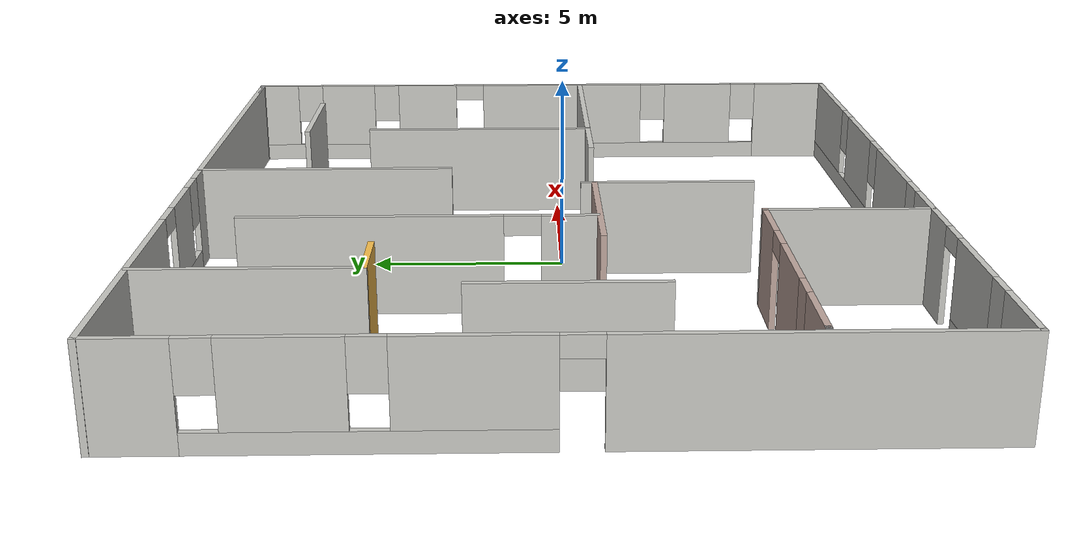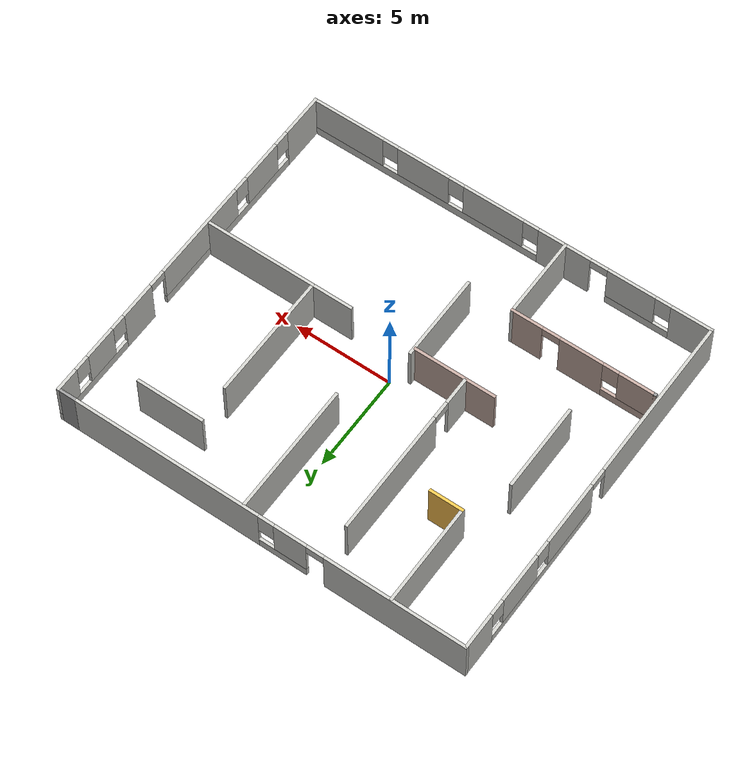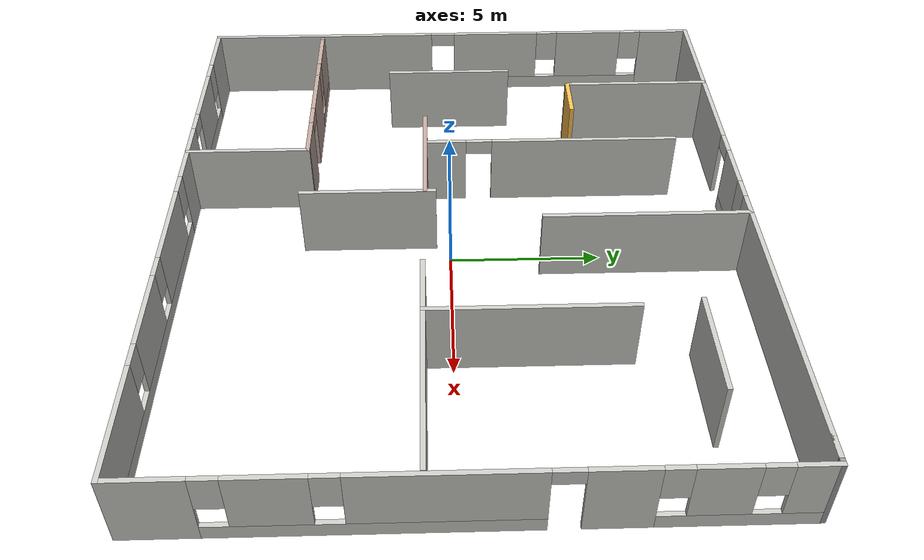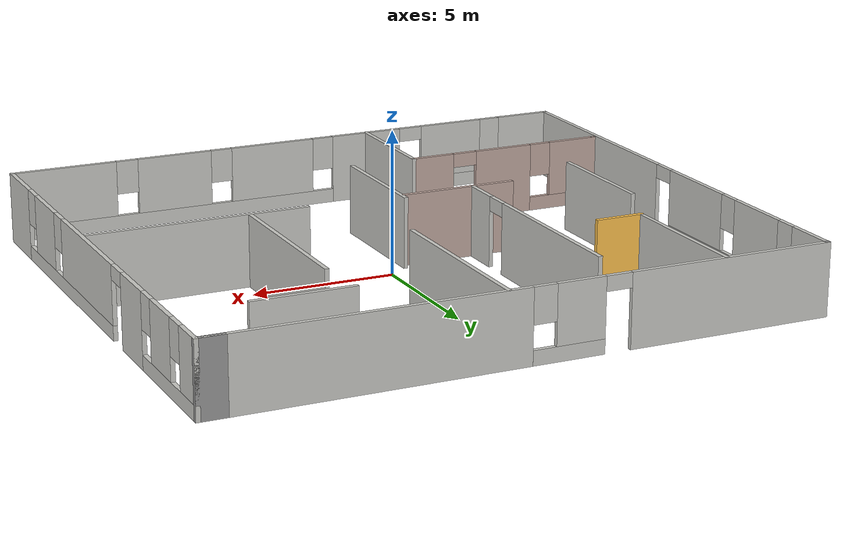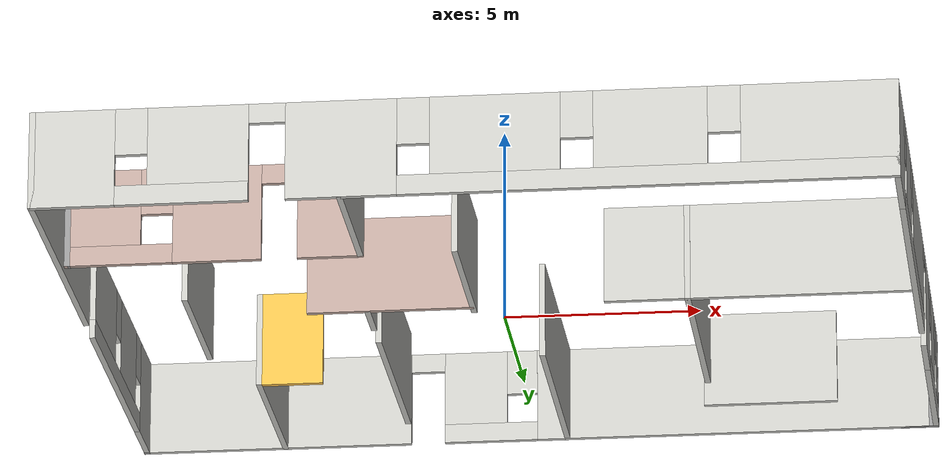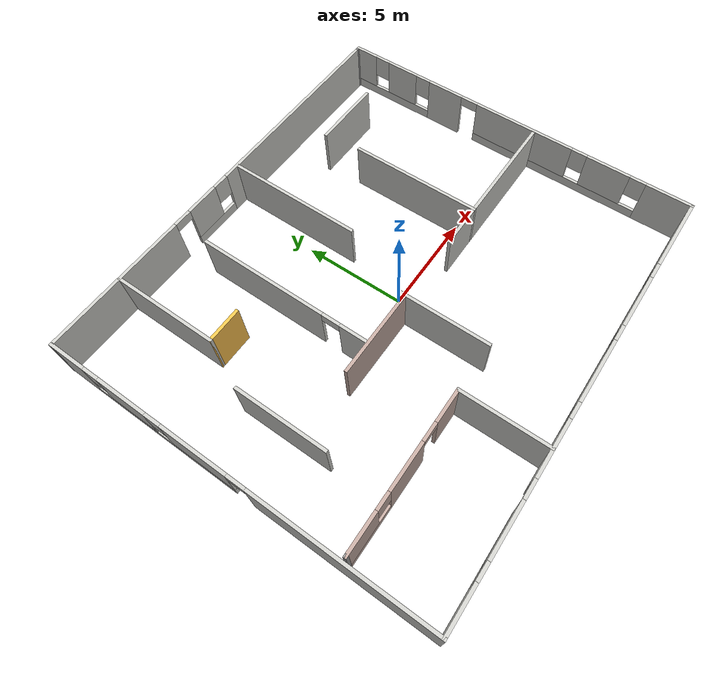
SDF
<?xml version='1.0'?>
<sdf version='1.6'>
  <model name='training_area'>
    <pose frame=''>-0.095962 0.33644 0 0 -0 0</pose>
    <link name='Wall_11'>
      <collision name='Wall_11_Collision'>
        <geometry>
          <box>
            <size>4.25 0.15 2.5</size>
          </box>
        </geometry>
        <pose frame=''>0 0 1.25 0 -0 0</pose>
      </collision>
      <visual name='Wall_11_Visual'>
        <pose frame=''>0 0 1.25 0 -0 0</pose>
        <geometry>
          <box>
            <size>4.25 0.15 2.5</size>
          </box>
        </geometry>
        <material>
          <script>
            <uri>file://media/materials/scripts/gazebo.material</uri>
            <name>Gazebo/CeilingTiled</name>
          </script>
          <ambient>0.760784 0.662745 0.627451 1</ambient>
        </material>
        <meta>
          <layer>0</layer>
        </meta>
      </visual>
      <pose frame=''>-2.97768 -7.23047 0 0 0 -1.5708</pose>
    </link>
    <link name='Wall_13'>
      <pose frame=''>-6.65268 -5.18047 0 0 -0 3.14159</pose>
      <visual name='Wall_13_Visual_0'>
        <pose frame=''>-2.92229 0 1.25 0 -0 0</pose>
        <geometry>
          <box>
            <size>1.65542 0.15 2.5</size>
          </box>
        </geometry>
        <material>
          <script>
            <uri>file://media/materials/scripts/gazebo.material</uri>
            <name>Gazebo/Grey</name>
          </script>
          <ambient>0.760784 0.662745 0.627451 1</ambient>
        </material>
        <meta>
          <layer>0</layer>
        </meta>
      </visual>
      <collision name='Wall_13_Collision_0'>
        <geometry>
          <box>
            <size>1.65542 0.15 2.5</size>
          </box>
        </geometry>
        <pose frame=''>-2.92229 0 1.25 0 -0 0</pose>
      </collision>
      <visual name='Wall_13_Visual_1'>
        <pose frame=''>-0.081383 0 1.25 0 -0 0</pose>
        <geometry>
          <box>
            <size>2.22639 0.15 2.5</size>
          </box>
        </geometry>
        <material>
          <script>
            <uri>file://media/materials/scripts/gazebo.material</uri>
            <name>Gazebo/Grey</name>
          </script>
          <ambient>0.760784 0.662745 0.627451 1</ambient>
        </material>
        <meta>
          <layer>0</layer>
        </meta>
      </visual>
      <collision name='Wall_13_Collision_1'>
        <geometry>
          <box>
            <size>2.22639 0.15 2.5</size>
          </box>
        </geometry>
        <pose frame=''>-0.081383 0 1.25 0 -0 0</pose>
      </collision>
      <visual name='Wall_13_Visual_2'>
        <pose frame=''>2.39091 0 0.25 0 -0 0</pose>
        <geometry>
          <box>
            <size>2.71819 0.15 0.5</size>
          </box>
        </geometry>
        <material>
          <script>
            <uri>file://media/materials/scripts/gazebo.material</uri>
            <name>Gazebo/Grey</name>
          </script>
          <ambient>0.760784 0.662745 0.627451 1</ambient>
        </material>
        <meta>
          <layer>0</layer>
        </meta>
      </visual>
      <collision name='Wall_13_Collision_2'>
        <geometry>
          <box>
            <size>2.71819 0.15 0.5</size>
          </box>
        </geometry>
        <pose frame=''>2.39091 0 0.25 0 -0 0</pose>
      </collision>
      <visual name='Wall_13_Visual_3'>
        <pose frame=''>2.79091 0 1.5 0 -0 0</pose>
        <geometry>
          <box>
            <size>1.91819 0.15 2</size>
          </box>
        </geometry>
        <material>
          <script>
            <uri>file://media/materials/scripts/gazebo.material</uri>
            <name>Gazebo/Grey</name>
          </script>
          <ambient>0.760784 0.662745 0.627451 1</ambient>
        </material>
        <meta>
          <layer>0</layer>
        </meta>
      </visual>
      <collision name='Wall_13_Collision_3'>
        <geometry>
          <box>
            <size>1.91819 0.15 2</size>
          </box>
        </geometry>
        <pose frame=''>2.79091 0 1.5 0 -0 0</pose>
      </collision>
      <visual name='Wall_13_Visual_4'>
        <pose frame=''>1.43181 0 1.9 0 -0 0</pose>
        <geometry>
          <box>
            <size>0.8 0.15 1.2</size>
          </box>
        </geometry>
        <material>
          <script>
            <uri>file://media/materials/scripts/gazebo.material</uri>
            <name>Gazebo/Grey</name>
          </script>
          <ambient>0.760784 0.662745 0.627451 1</ambient>
        </material>
        <meta>
          <layer>0</layer>
        </meta>
      </visual>
      <collision name='Wall_13_Collision_4'>
        <geometry>
          <box>
            <size>0.8 0.15 1.2</size>
          </box>
        </geometry>
        <pose frame=''>1.43181 0 1.9 0 -0 0</pose>
      </collision>
      <visual name='Wall_13_Visual_5'>
        <pose frame=''>-1.64458 0 2.25 0 -0 0</pose>
        <geometry>
          <box>
            <size>0.9 0.15 0.5</size>
          </box>
        </geometry>
        <material>
          <script>
            <uri>file://media/materials/scripts/gazebo.material</uri>
            <name>Gazebo/Grey</name>
          </script>
          <ambient>0.760784 0.662745 0.627451 1</ambient>
        </material>
        <meta>
          <layer>0</layer>
        </meta>
      </visual>
      <collision name='Wall_13_Collision_5'>
        <geometry>
          <box>
            <size>0.9 0.15 0.5</size>
          </box>
        </geometry>
        <pose frame=''>-1.64458 0 2.25 0 -0 0</pose>
      </collision>
    </link>
    <link name='Wall_14'>
      <collision name='Wall_14_Collision'>
        <geometry>
          <box>
            <size>0.15 0.15 2.5</size>
          </box>
        </geometry>
        <pose frame=''>0 0 1.25 0 -0 0</pose>
      </collision>
      <visual name='Wall_14_Visual'>
        <pose frame=''>0 0 1.25 0 -0 0</pose>
        <geometry>
          <box>
            <size>0.15 0.15 2.5</size>
          </box>
        </geometry>
        <material>
          <script>
            <uri>file://media/materials/scripts/gazebo.material</uri>
            <name>Gazebo/Grey</name>
          </script>
          <ambient>1 1 1 1</ambient>
        </material>
        <meta>
          <layer>0</layer>
        </meta>
      </visual>
      <pose frame=''>-10.3277 -5.18047 0 0 -0 0</pose>
    </link>
    <link name='Wall_16'>
      <collision name='Wall_16_Collision'>
        <geometry>
          <box>
            <size>4.25 0.15 2.5</size>
          </box>
        </geometry>
        <pose frame=''>0 0 1.25 0 -0 0</pose>
      </collision>
      <visual name='Wall_16_Visual'>
        <pose frame=''>0 0 1.25 0 -0 0</pose>
        <geometry>
          <box>
            <size>4.25 0.15 2.5</size>
          </box>
        </geometry>
        <material>
          <script>
            <uri>file://media/materials/scripts/gazebo.material</uri>
            <name>Gazebo/Grey</name>
          </script>
          <ambient>0.760784 0.662745 0.627451 1</ambient>
        </material>
        <meta>
          <layer>0</layer>
        </meta>
      </visual>
      <pose frame=''>-2.72495 -1.14348 0 0 -0 0</pose>
    </link>
    <link name='Wall_18'>
      <pose frame=''>-3.31028 3.23789 0 0 -0 1.5708</pose>
      <visual name='Wall_18_Visual_0'>
        <pose frame=''>-3.66742 0 1.25 0 -0 0</pose>
        <geometry>
          <box>
            <size>1.41515 0.15 2.5</size>
          </box>
        </geometry>
        <material>
          <script>
            <uri>file://media/materials/scripts/gazebo.material</uri>
            <name>Gazebo/CeilingTiled</name>
          </script>
          <ambient>0.760784 0.662745 0.627451 1</ambient>
        </material>
        <meta>
          <layer>0</layer>
        </meta>
      </visual>
      <collision name='Wall_18_Collision_0'>
        <geometry>
          <box>
            <size>1.41515 0.15 2.5</size>
          </box>
        </geometry>
        <pose frame=''>-3.66742 0 1.25 0 -0 0</pose>
      </collision>
      <visual name='Wall_18_Visual_1'>
        <pose frame=''>1.15758 0 1.25 0 -0 0</pose>
        <geometry>
          <box>
            <size>6.43485 0.15 2.5</size>
          </box>
        </geometry>
        <material>
          <script>
            <uri>file://media/materials/scripts/gazebo.material</uri>
            <name>Gazebo/CeilingTiled</name>
          </script>
          <ambient>0.760784 0.662745 0.627451 1</ambient>
        </material>
        <meta>
          <layer>0</layer>
        </meta>
      </visual>
      <collision name='Wall_18_Collision_1'>
        <geometry>
          <box>
            <size>6.43485 0.15 2.5</size>
          </box>
        </geometry>
        <pose frame=''>1.15758 0 1.25 0 -0 0</pose>
      </collision>
      <visual name='Wall_18_Visual_2'>
        <pose frame=''>-2.50985 0 2.25 0 -0 0</pose>
        <geometry>
          <box>
            <size>0.9 0.15 0.5</size>
          </box>
        </geometry>
        <material>
          <script>
            <uri>file://media/materials/scripts/gazebo.material</uri>
            <name>Gazebo/CeilingTiled</name>
          </script>
          <ambient>0.760784 0.662745 0.627451 1</ambient>
        </material>
        <meta>
          <layer>0</layer>
        </meta>
      </visual>
      <collision name='Wall_18_Collision_2'>
        <geometry>
          <box>
            <size>0.9 0.15 0.5</size>
          </box>
        </geometry>
        <pose frame=''>-2.50985 0 2.25 0 -0 0</pose>
      </collision>
    </link>
    <link name='Wall_20'>
      <collision name='Wall_20_Collision'>
        <geometry>
          <box>
            <size>4.5 0.15 2.5</size>
          </box>
        </geometry>
        <pose frame=''>0 0 1.25 0 -0 0</pose>
      </collision>
      <visual name='Wall_20_Visual'>
        <pose frame=''>0 0 1.25 0 -0 0</pose>
        <geometry>
          <box>
            <size>4.5 0.15 2.5</size>
          </box>
        </geometry>
        <material>
          <script>
            <uri>file://media/materials/scripts/gazebo.material</uri>
            <name>Gazebo/CeilingTiled</name>
          </script>
          <ambient>0.996078 0.47451 0.0196078 1</ambient>
        </material>
        <meta>
          <layer>0</layer>
        </meta>
      </visual>
      <pose frame=''>-0.625048 -3.03701 0 0 -0 1.5708</pose>
    </link>
    <link name='Wall_22'>
      <collision name='Wall_22_Collision'>
        <geometry>
          <box>
            <size>5.25 0.15 2.5</size>
          </box>
        </geometry>
        <pose frame=''>0 0 1.25 0 -0 0</pose>
      </collision>
      <visual name='Wall_22_Visual'>
        <pose frame=''>0 0 1.25 0 -0 0</pose>
        <geometry>
          <box>
            <size>5.25 0.15 2.5</size>
          </box>
        </geometry>
        <material>
          <script>
            <uri>file://media/materials/scripts/gazebo.material</uri>
            <name>Gazebo/CeilingTiled</name>
          </script>
          <ambient>1 0.764706 0.305882 1</ambient>
        </material>
        <meta>
          <layer>0</layer>
        </meta>
      </visual>
      <pose frame=''>-6.80922 6.72196 0 0 0 -1.5708</pose>
    </link>
    <link name='Wall_23'>
      <collision name='Wall_23_Collision'>
        <geometry>
          <box>
            <size>1.75 0.15 2.5</size>
          </box>
        </geometry>
        <pose frame=''>0 0 1.25 0 -0 0</pose>
      </collision>
      <visual name='Wall_23_Visual'>
        <pose frame=''>0 0 1.25 0 -0 0</pose>
        <geometry>
          <box>
            <size>1.75 0.15 2.5</size>
          </box>
        </geometry>
        <material>
          <script>
            <uri>file://media/materials/scripts/gazebo.material</uri>
            <name>Gazebo/Grey</name>
          </script>
          <ambient>1 0.764706 0.305882 1</ambient>
        </material>
        <meta>
          <layer>0</layer>
        </meta>
      </visual>
      <pose frame=''>-6.00922 4.17196 0 0 -0 0</pose>
    </link>
    <link name='Wall_26'>
      <collision name='Wall_26_Collision'>
        <geometry>
          <box>
            <size>4.5 0.15 2.5</size>
          </box>
        </geometry>
        <pose frame=''>0 0 1.25 0 -0 0</pose>
      </collision>
      <visual name='Wall_26_Visual'>
        <pose frame=''>0 0 1.25 0 -0 0</pose>
        <geometry>
          <box>
            <size>4.5 0.15 2.5</size>
          </box>
        </geometry>
        <material>
          <script>
            <uri>file://media/materials/scripts/gazebo.material</uri>
            <name>Gazebo/CeilingTiled</name>
          </script>
          <ambient>1 0.764706 0.305882 1</ambient>
        </material>
        <meta>
          <layer>0</layer>
        </meta>
      </visual>
      <pose frame=''>-7.78566 -0.226392 0 0 0 -1.5708</pose>
    </link>
    <link name='Wall_28'>
      <collision name='Wall_28_Collision'>
        <geometry>
          <box>
            <size>6.75 0.15 2.5</size>
          </box>
        </geometry>
        <pose frame=''>0 0 1.25 0 -0 0</pose>
      </collision>
      <visual name='Wall_28_Visual'>
        <pose frame=''>0 0 1.25 0 -0 0</pose>
        <geometry>
          <box>
            <size>6.75 0.15 2.5</size>
          </box>
        </geometry>
        <material>
          <script>
            <uri>file://media/materials/scripts/gazebo.material</uri>
            <name>Gazebo/CeilingTiled</name>
          </script>
          <ambient>0.435294 0.796078 0.67451 1</ambient>
        </material>
        <meta>
          <layer>0</layer>
        </meta>
      </visual>
      <pose frame=''>0.758252 5.97196 0 0 0 -1.5708</pose>
    </link>
    <link name='Wall_3'>
      <pose frame=''>-0.13 9.3 0 0 -0 3.14159</pose>
      <visual name='Wall_3_Visual_0'>
        <pose frame=''>-5.29204 0 1.25 0 -0 0</pose>
        <geometry>
          <box>
            <size>10.4159 0.15 2.5</size>
          </box>
        </geometry>
        <material>
          <script>
            <uri>file://media/materials/scripts/gazebo.material</uri>
            <name>Gazebo/CeilingTiled</name>
          </script>
          <ambient>1 0.764706 0.305882 1</ambient>
        </material>
        <meta>
          <layer>0</layer>
        </meta>
      </visual>
      <collision name='Wall_3_Collision_0'>
        <geometry>
          <box>
            <size>10.4159 0.15 2.5</size>
          </box>
        </geometry>
        <pose frame=''>-5.29204 0 1.25 0 -0 0</pose>
      </collision>
      <visual name='Wall_3_Visual_1'>
        <pose frame=''>6.89421 0 1.25 0 -0 0</pose>
        <geometry>
          <box>
            <size>7.21159 0.15 2.5</size>
          </box>
        </geometry>
        <material>
          <script>
            <uri>file://media/materials/scripts/gazebo.material</uri>
            <name>Gazebo/CeilingTiled</name>
          </script>
          <ambient>1 0.764706 0.305882 1</ambient>
        </material>
        <meta>
          <layer>0</layer>
        </meta>
      </visual>
      <collision name='Wall_3_Collision_1'>
        <geometry>
          <box>
            <size>7.21159 0.15 2.5</size>
          </box>
        </geometry>
        <pose frame=''>6.89421 0 1.25 0 -0 0</pose>
      </collision>
      <visual name='Wall_3_Visual_2'>
        <pose frame=''>1.15217 0 0.25 0 -0 0</pose>
        <geometry>
          <box>
            <size>2.47249 0.15 0.5</size>
          </box>
        </geometry>
        <material>
          <script>
            <uri>file://media/materials/scripts/gazebo.material</uri>
            <name>Gazebo/CeilingTiled</name>
          </script>
          <ambient>1 0.764706 0.305882 1</ambient>
        </material>
        <meta>
          <layer>0</layer>
        </meta>
      </visual>
      <collision name='Wall_3_Collision_2'>
        <geometry>
          <box>
            <size>2.47249 0.15 0.5</size>
          </box>
        </geometry>
        <pose frame=''>1.15217 0 0.25 0 -0 0</pose>
      </collision>
      <visual name='Wall_3_Visual_3'>
        <pose frame=''>1.55217 0 1.5 0 -0 0</pose>
        <geometry>
          <box>
            <size>1.67249 0.15 2</size>
          </box>
        </geometry>
        <material>
          <script>
            <uri>file://media/materials/scripts/gazebo.material</uri>
            <name>Gazebo/CeilingTiled</name>
          </script>
          <ambient>1 0.764706 0.305882 1</ambient>
        </material>
        <meta>
          <layer>0</layer>
        </meta>
      </visual>
      <collision name='Wall_3_Collision_3'>
        <geometry>
          <box>
            <size>1.67249 0.15 2</size>
          </box>
        </geometry>
        <pose frame=''>1.55217 0 1.5 0 -0 0</pose>
      </collision>
      <visual name='Wall_3_Visual_4'>
        <pose frame=''>0.315921 0 1.9 0 -0 0</pose>
        <geometry>
          <box>
            <size>0.8 0.15 1.2</size>
          </box>
        </geometry>
        <material>
          <script>
            <uri>file://media/materials/scripts/gazebo.material</uri>
            <name>Gazebo/CeilingTiled</name>
          </script>
          <ambient>1 0.764706 0.305882 1</ambient>
        </material>
        <meta>
          <layer>0</layer>
        </meta>
      </visual>
      <collision name='Wall_3_Collision_4'>
        <geometry>
          <box>
            <size>0.8 0.15 1.2</size>
          </box>
        </geometry>
        <pose frame=''>0.315921 0 1.9 0 -0 0</pose>
      </collision>
      <visual name='Wall_3_Visual_5'>
        <pose frame=''>2.83841 0 2.25 0 -0 0</pose>
        <geometry>
          <box>
            <size>0.9 0.15 0.5</size>
          </box>
        </geometry>
        <material>
          <script>
            <uri>file://media/materials/scripts/gazebo.material</uri>
            <name>Gazebo/CeilingTiled</name>
          </script>
          <ambient>1 0.764706 0.305882 1</ambient>
        </material>
        <meta>
          <layer>0</layer>
        </meta>
      </visual>
      <collision name='Wall_3_Collision_5'>
        <geometry>
          <box>
            <size>0.9 0.15 0.5</size>
          </box>
        </geometry>
        <pose frame=''>2.83841 0 2.25 0 -0 0</pose>
      </collision>
    </link>
    <link name='Wall_30'>
      <collision name='Wall_30_Collision'>
        <geometry>
          <box>
            <size>3.5 0.15 2.5</size>
          </box>
        </geometry>
        <pose frame=''>0 0 1.25 0 -0 0</pose>
      </collision>
      <visual name='Wall_30_Visual'>
        <pose frame=''>0 0 1.25 0 -0 0</pose>
        <geometry>
          <box>
            <size>3.5 0.15 2.5</size>
          </box>
        </geometry>
        <material>
          <script>
            <uri>file://media/materials/scripts/gazebo.material</uri>
            <name>Gazebo/CeilingTiled</name>
          </script>
          <ambient>0.435294 0.796078 0.67451 1</ambient>
        </material>
        <meta>
          <layer>0</layer>
        </meta>
      </visual>
      <pose frame=''>6.33904 6.99359 0 0 -0 0</pose>
    </link>
    <link name='Wall_32'>
      <collision name='Wall_32_Collision'>
        <geometry>
          <box>
            <size>6.5 0.15 2.5</size>
          </box>
        </geometry>
        <pose frame=''>0 0 1.25 0 -0 0</pose>
      </collision>
      <visual name='Wall_32_Visual'>
        <pose frame=''>0 0 1.25 0 -0 0</pose>
        <geometry>
          <box>
            <size>6.5 0.15 2.5</size>
          </box>
        </geometry>
        <material>
          <script>
            <uri>file://media/materials/scripts/gazebo.material</uri>
            <name>Gazebo/CeilingTiled</name>
          </script>
          <ambient>0.435294 0.796078 0.67451 1</ambient>
        </material>
        <meta>
          <layer>0</layer>
        </meta>
      </visual>
      <pose frame=''>4.82678 1.94706 0 0 0 -1.5708</pose>
    </link>
    <link name='Wall_34'>
      <collision name='Wall_34_Collision'>
        <geometry>
          <box>
            <size>7.75 0.15 2.5</size>
          </box>
        </geometry>
        <pose frame=''>0 0 1.25 0 -0 0</pose>
      </collision>
      <visual name='Wall_34_Visual'>
        <pose frame=''>0 0 1.25 0 -0 0</pose>
        <geometry>
          <box>
            <size>7.75 0.15 2.5</size>
          </box>
        </geometry>
        <material>
          <script>
            <uri>file://media/materials/scripts/gazebo.material</uri>
            <name>Gazebo/CeilingTiled</name>
          </script>
          <ambient>0.996078 0.47451 0.0196078 1</ambient>
        </material>
        <meta>
          <layer>0</layer>
        </meta>
      </visual>
      <pose frame=''>6.59252 -1.22485 0 0 -0 0</pose>
    </link>
    <link name='Wall_4'>
      <collision name='Wall_4_Collision'>
        <geometry>
          <box>
            <size>0.16 0.15 2.5</size>
          </box>
        </geometry>
        <pose frame=''>0 0 1.25 0 -0 0</pose>
      </collision>
      <visual name='Wall_4_Visual'>
        <pose frame=''>0 0 1.25 0 -0 0</pose>
        <geometry>
          <box>
            <size>0.16 0.15 2.5</size>
          </box>
        </geometry>
        <material>
          <script>
            <uri>file://media/materials/scripts/gazebo.material</uri>
            <name>Gazebo/Grey</name>
          </script>
          <ambient>1 1 1 1</ambient>
        </material>
        <meta>
          <layer>0</layer>
        </meta>
      </visual>
      <pose frame=''>-10.55 9.3 0 0 -0 0</pose>
    </link>
    <link name='Wall_5'>
      <pose frame=''>-10.545 0 0 0 0 -1.5708</pose>
      <visual name='Wall_5_Visual_0'>
        <pose frame=''>-8.42498 0 1.25 0 -0 0</pose>
        <geometry>
          <box>
            <size>1.90004 0.15 2.5</size>
          </box>
        </geometry>
        <material>
          <script>
            <uri>file://media/materials/scripts/gazebo.material</uri>
            <name>Gazebo/CeilingTiled</name>
          </script>
          <ambient>1 0.764706 0.305882 1</ambient>
        </material>
        <meta>
          <layer>0</layer>
        </meta>
      </visual>
      <collision name='Wall_5_Collision_0'>
        <geometry>
          <box>
            <size>1.90004 0.15 2.5</size>
          </box>
        </geometry>
        <pose frame=''>-8.42498 0 1.25 0 -0 0</pose>
      </collision>
      <visual name='Wall_5_Visual_1'>
        <pose frame=''>5.11807 0 1.25 0 -0 0</pose>
        <geometry>
          <box>
            <size>8.51386 0.15 2.5</size>
          </box>
        </geometry>
        <material>
          <script>
            <uri>file://media/materials/scripts/gazebo.material</uri>
            <name>Gazebo/CeilingTiled</name>
          </script>
          <ambient>1 0.764706 0.305882 1</ambient>
        </material>
        <meta>
          <layer>0</layer>
        </meta>
      </visual>
      <collision name='Wall_5_Collision_1'>
        <geometry>
          <box>
            <size>8.51386 0.15 2.5</size>
          </box>
        </geometry>
        <pose frame=''>5.11807 0 1.25 0 -0 0</pose>
      </collision>
      <visual name='Wall_5_Visual_2'>
        <pose frame=''>-3.75691 0 0.25 0 -0 0</pose>
        <geometry>
          <box>
            <size>7.4361 0.15 0.5</size>
          </box>
        </geometry>
        <material>
          <script>
            <uri>file://media/materials/scripts/gazebo.material</uri>
            <name>Gazebo/CeilingTiled</name>
          </script>
          <ambient>1 0.764706 0.305882 1</ambient>
        </material>
        <meta>
          <layer>0</layer>
        </meta>
      </visual>
      <collision name='Wall_5_Collision_2'>
        <geometry>
          <box>
            <size>7.4361 0.15 0.5</size>
          </box>
        </geometry>
        <pose frame=''>-3.75691 0 0.25 0 -0 0</pose>
      </collision>
      <visual name='Wall_5_Visual_3'>
        <pose frame=''>-5.40686 0 1.5 0 -0 0</pose>
        <geometry>
          <box>
            <size>2.5362 0.15 2</size>
          </box>
        </geometry>
        <material>
          <script>
            <uri>file://media/materials/scripts/gazebo.material</uri>
            <name>Gazebo/CeilingTiled</name>
          </script>
          <ambient>1 0.764706 0.305882 1</ambient>
        </material>
        <meta>
          <layer>0</layer>
        </meta>
      </visual>
      <collision name='Wall_5_Collision_3'>
        <geometry>
          <box>
            <size>2.5362 0.15 2</size>
          </box>
        </geometry>
        <pose frame=''>-5.40686 0 1.5 0 -0 0</pose>
      </collision>
      <visual name='Wall_5_Visual_4'>
        <pose frame=''>-1.68881 0 1.5 0 -0 0</pose>
        <geometry>
          <box>
            <size>3.2999 0.15 2</size>
          </box>
        </geometry>
        <material>
          <script>
            <uri>file://media/materials/scripts/gazebo.material</uri>
            <name>Gazebo/CeilingTiled</name>
          </script>
          <ambient>1 0.764706 0.305882 1</ambient>
        </material>
        <meta>
          <layer>0</layer>
        </meta>
      </visual>
      <collision name='Wall_5_Collision_4'>
        <geometry>
          <box>
            <size>3.2999 0.15 2</size>
          </box>
        </geometry>
        <pose frame=''>-1.68881 0 1.5 0 -0 0</pose>
      </collision>
      <visual name='Wall_5_Visual_5'>
        <pose frame=''>-7.07496 0 1.9 0 -0 0</pose>
        <geometry>
          <box>
            <size>0.8 0.15 1.2</size>
          </box>
        </geometry>
        <material>
          <script>
            <uri>file://media/materials/scripts/gazebo.material</uri>
            <name>Gazebo/CeilingTiled</name>
          </script>
          <ambient>1 0.764706 0.305882 1</ambient>
        </material>
        <meta>
          <layer>0</layer>
        </meta>
      </visual>
      <collision name='Wall_5_Collision_5'>
        <geometry>
          <box>
            <size>0.8 0.15 1.2</size>
          </box>
        </geometry>
        <pose frame=''>-7.07496 0 1.9 0 -0 0</pose>
      </collision>
      <visual name='Wall_5_Visual_6'>
        <pose frame=''>-3.73876 0 1.9 0 -0 0</pose>
        <geometry>
          <box>
            <size>0.8 0.15 1.2</size>
          </box>
        </geometry>
        <material>
          <script>
            <uri>file://media/materials/scripts/gazebo.material</uri>
            <name>Gazebo/CeilingTiled</name>
          </script>
          <ambient>1 0.764706 0.305882 1</ambient>
        </material>
        <meta>
          <layer>0</layer>
        </meta>
      </visual>
      <collision name='Wall_5_Collision_6'>
        <geometry>
          <box>
            <size>0.8 0.15 1.2</size>
          </box>
        </geometry>
        <pose frame=''>-3.73876 0 1.9 0 -0 0</pose>
      </collision>
      <visual name='Wall_5_Visual_7'>
        <pose frame=''>0.41114 0 2.25 0 -0 0</pose>
        <geometry>
          <box>
            <size>0.9 0.15 0.5</size>
          </box>
        </geometry>
        <material>
          <script>
            <uri>file://media/materials/scripts/gazebo.material</uri>
            <name>Gazebo/CeilingTiled</name>
          </script>
          <ambient>1 0.764706 0.305882 1</ambient>
        </material>
        <meta>
          <layer>0</layer>
        </meta>
      </visual>
      <collision name='Wall_5_Collision_7'>
        <geometry>
          <box>
            <size>0.9 0.15 0.5</size>
          </box>
        </geometry>
        <pose frame=''>0.41114 0 2.25 0 -0 0</pose>
      </collision>
    </link>
    <link name='Wall_6'>
      <pose frame=''>0.005 -9.3 0 0 -0 0</pose>
      <visual name='Wall_6_Visual_0'>
        <pose frame=''>-9.56238 0 1.25 0 -0 0</pose>
        <geometry>
          <box>
            <size>2.12524 0.15 2.5</size>
          </box>
        </geometry>
        <material>
          <script>
            <uri>file://media/materials/scripts/gazebo.material</uri>
            <name>Gazebo/CeilingTiled</name>
          </script>
          <ambient>1 0.764706 0.305882 1</ambient>
        </material>
        <meta>
          <layer>0</layer>
        </meta>
      </visual>
      <collision name='Wall_6_Collision_0'>
        <geometry>
          <box>
            <size>2.12524 0.15 2.5</size>
          </box>
        </geometry>
        <pose frame=''>-9.56238 0 1.25 0 -0 0</pose>
      </collision>
      <visual name='Wall_6_Visual_1'>
        <pose frame=''>-2.94841 0 1.25 0 -0 0</pose>
        <geometry>
          <box>
            <size>2.73031 0.15 2.5</size>
          </box>
        </geometry>
        <material>
          <script>
            <uri>file://media/materials/scripts/gazebo.material</uri>
            <name>Gazebo/CeilingTiled</name>
          </script>
          <ambient>1 0.764706 0.305882 1</ambient>
        </material>
        <meta>
          <layer>0</layer>
        </meta>
      </visual>
      <collision name='Wall_6_Collision_1'>
        <geometry>
          <box>
            <size>2.73031 0.15 2.5</size>
          </box>
        </geometry>
        <pose frame=''>-2.94841 0 1.25 0 -0 0</pose>
      </collision>
      <visual name='Wall_6_Visual_2'>
        <pose frame=''>-6.85666 0 0.25 0 -0 0</pose>
        <geometry>
          <box>
            <size>3.2862 0.15 0.5</size>
          </box>
        </geometry>
        <material>
          <script>
            <uri>file://media/materials/scripts/gazebo.material</uri>
            <name>Gazebo/CeilingTiled</name>
          </script>
          <ambient>1 0.764706 0.305882 1</ambient>
        </material>
        <meta>
          <layer>0</layer>
        </meta>
      </visual>
      <collision name='Wall_6_Collision_2'>
        <geometry>
          <box>
            <size>3.2862 0.15 0.5</size>
          </box>
        </geometry>
        <pose frame=''>-6.85666 0 0.25 0 -0 0</pose>
      </collision>
      <visual name='Wall_6_Visual_3'>
        <pose frame=''>4.52087 0 0.25 0 -0 0</pose>
        <geometry>
          <box>
            <size>12.2083 0.15 0.5</size>
          </box>
        </geometry>
        <material>
          <script>
            <uri>file://media/materials/scripts/gazebo.material</uri>
            <name>Gazebo/CeilingTiled</name>
          </script>
          <ambient>1 0.764706 0.305882 1</ambient>
        </material>
        <meta>
          <layer>0</layer>
        </meta>
      </visual>
      <collision name='Wall_6_Collision_3'>
        <geometry>
          <box>
            <size>12.2083 0.15 0.5</size>
          </box>
        </geometry>
        <pose frame=''>4.52087 0 0.25 0 -0 0</pose>
      </collision>
      <visual name='Wall_6_Visual_4'>
        <pose frame=''>-6.45666 0 1.5 0 -0 0</pose>
        <geometry>
          <box>
            <size>2.4862 0.15 2</size>
          </box>
        </geometry>
        <material>
          <script>
            <uri>file://media/materials/scripts/gazebo.material</uri>
            <name>Gazebo/CeilingTiled</name>
          </script>
          <ambient>1 0.764706 0.305882 1</ambient>
        </material>
        <meta>
          <layer>0</layer>
        </meta>
      </visual>
      <collision name='Wall_6_Collision_4'>
        <geometry>
          <box>
            <size>2.4862 0.15 2</size>
          </box>
        </geometry>
        <pose frame=''>-6.45666 0 1.5 0 -0 0</pose>
      </collision>
      <visual name='Wall_6_Visual_5'>
        <pose frame=''>-6.45666 0 1.5 0 -0 0</pose>
        <geometry>
          <box>
            <size>2.4862 0.15 2</size>
          </box>
        </geometry>
        <material>
          <script>
            <uri>file://media/materials/scripts/gazebo.material</uri>
            <name>Gazebo/CeilingTiled</name>
          </script>
          <ambient>1 0.764706 0.305882 1</ambient>
        </material>
        <meta>
          <layer>0</layer>
        </meta>
      </visual>
      <collision name='Wall_6_Collision_5'>
        <geometry>
          <box>
            <size>2.4862 0.15 2</size>
          </box>
        </geometry>
        <pose frame=''>-6.45666 0 1.5 0 -0 0</pose>
      </collision>
      <visual name='Wall_6_Visual_6'>
        <pose frame=''>0.810323 0 1.5 0 -0 0</pose>
        <geometry>
          <box>
            <size>3.18716 0.15 2</size>
          </box>
        </geometry>
        <material>
          <script>
            <uri>file://media/materials/scripts/gazebo.material</uri>
            <name>Gazebo/CeilingTiled</name>
          </script>
          <ambient>1 0.764706 0.305882 1</ambient>
        </material>
        <meta>
          <layer>0</layer>
        </meta>
      </visual>
      <collision name='Wall_6_Collision_6'>
        <geometry>
          <box>
            <size>3.18716 0.15 2</size>
          </box>
        </geometry>
        <pose frame=''>0.810323 0 1.5 0 -0 0</pose>
      </collision>
      <visual name='Wall_6_Visual_7'>
        <pose frame=''>4.59406 0 1.5 0 -0 0</pose>
        <geometry>
          <box>
            <size>2.78031 0.15 2</size>
          </box>
        </geometry>
        <material>
          <script>
            <uri>file://media/materials/scripts/gazebo.material</uri>
            <name>Gazebo/CeilingTiled</name>
          </script>
          <ambient>1 0.764706 0.305882 1</ambient>
        </material>
        <meta>
          <layer>0</layer>
        </meta>
      </visual>
      <collision name='Wall_6_Collision_7'>
        <geometry>
          <box>
            <size>2.78031 0.15 2</size>
          </box>
        </geometry>
        <pose frame=''>4.59406 0 1.5 0 -0 0</pose>
      </collision>
      <visual name='Wall_6_Visual_8'>
        <pose frame=''>8.70461 0 1.5 0 -0 0</pose>
        <geometry>
          <box>
            <size>3.84079 0.15 2</size>
          </box>
        </geometry>
        <material>
          <script>
            <uri>file://media/materials/scripts/gazebo.material</uri>
            <name>Gazebo/CeilingTiled</name>
          </script>
          <ambient>1 0.764706 0.305882 1</ambient>
        </material>
        <meta>
          <layer>0</layer>
        </meta>
      </visual>
      <collision name='Wall_6_Collision_8'>
        <geometry>
          <box>
            <size>3.84079 0.15 2</size>
          </box>
        </geometry>
        <pose frame=''>8.70461 0 1.5 0 -0 0</pose>
      </collision>
      <visual name='Wall_6_Visual_9'>
        <pose frame=''>-8.09976 0 1.9 0 -0 0</pose>
        <geometry>
          <box>
            <size>0.8 0.15 1.2</size>
          </box>
        </geometry>
        <material>
          <script>
            <uri>file://media/materials/scripts/gazebo.material</uri>
            <name>Gazebo/CeilingTiled</name>
          </script>
          <ambient>1 0.764706 0.305882 1</ambient>
        </material>
        <meta>
          <layer>0</layer>
        </meta>
      </visual>
      <collision name='Wall_6_Collision_9'>
        <geometry>
          <box>
            <size>0.8 0.15 1.2</size>
          </box>
        </geometry>
        <pose frame=''>-8.09976 0 1.9 0 -0 0</pose>
      </collision>
      <visual name='Wall_6_Visual_10'>
        <pose frame=''>-1.18326 0 1.9 0 -0 0</pose>
        <geometry>
          <box>
            <size>0.8 0.15 1.2</size>
          </box>
        </geometry>
        <material>
          <script>
            <uri>file://media/materials/scripts/gazebo.material</uri>
            <name>Gazebo/CeilingTiled</name>
          </script>
          <ambient>1 0.764706 0.305882 1</ambient>
        </material>
        <meta>
          <layer>0</layer>
        </meta>
      </visual>
      <collision name='Wall_6_Collision_10'>
        <geometry>
          <box>
            <size>0.8 0.15 1.2</size>
          </box>
        </geometry>
        <pose frame=''>-1.18326 0 1.9 0 -0 0</pose>
      </collision>
      <visual name='Wall_6_Visual_11'>
        <pose frame=''>2.8039 0 1.9 0 -0 0</pose>
        <geometry>
          <box>
            <size>0.8 0.15 1.2</size>
          </box>
        </geometry>
        <material>
          <script>
            <uri>file://media/materials/scripts/gazebo.material</uri>
            <name>Gazebo/CeilingTiled</name>
          </script>
          <ambient>1 0.764706 0.305882 1</ambient>
        </material>
        <meta>
          <layer>0</layer>
        </meta>
      </visual>
      <collision name='Wall_6_Collision_11'>
        <geometry>
          <box>
            <size>0.8 0.15 1.2</size>
          </box>
        </geometry>
        <pose frame=''>2.8039 0 1.9 0 -0 0</pose>
      </collision>
      <visual name='Wall_6_Visual_12'>
        <pose frame=''>6.38421 0 1.9 0 -0 0</pose>
        <geometry>
          <box>
            <size>0.8 0.15 1.2</size>
          </box>
        </geometry>
        <material>
          <script>
            <uri>file://media/materials/scripts/gazebo.material</uri>
            <name>Gazebo/CeilingTiled</name>
          </script>
          <ambient>1 0.764706 0.305882 1</ambient>
        </material>
        <meta>
          <layer>0</layer>
        </meta>
      </visual>
      <collision name='Wall_6_Collision_12'>
        <geometry>
          <box>
            <size>0.8 0.15 1.2</size>
          </box>
        </geometry>
        <pose frame=''>6.38421 0 1.9 0 -0 0</pose>
      </collision>
      <visual name='Wall_6_Visual_13'>
        <pose frame=''>-4.76356 0 2.25 0 -0 0</pose>
        <geometry>
          <box>
            <size>0.9 0.15 0.5</size>
          </box>
        </geometry>
        <material>
          <script>
            <uri>file://media/materials/scripts/gazebo.material</uri>
            <name>Gazebo/CeilingTiled</name>
          </script>
          <ambient>1 0.764706 0.305882 1</ambient>
        </material>
        <meta>
          <layer>0</layer>
        </meta>
      </visual>
      <collision name='Wall_6_Collision_13'>
        <geometry>
          <box>
            <size>0.9 0.15 0.5</size>
          </box>
        </geometry>
        <pose frame=''>-4.76356 0 2.25 0 -0 0</pose>
      </collision>
      <visual name='Wall_6_Visual_14'>
        <pose frame=''>-4.76356 0 2.25 0 -0 0</pose>
        <geometry>
          <box>
            <size>0.9 0.15 0.5</size>
          </box>
        </geometry>
        <material>
          <script>
            <uri>file://media/materials/scripts/gazebo.material</uri>
            <name>Gazebo/CeilingTiled</name>
          </script>
          <ambient>1 0.764706 0.305882 1</ambient>
        </material>
        <meta>
          <layer>0</layer>
        </meta>
      </visual>
      <collision name='Wall_6_Collision_14'>
        <geometry>
          <box>
            <size>0.9 0.15 0.5</size>
          </box>
        </geometry>
        <pose frame=''>-4.76356 0 2.25 0 -0 0</pose>
      </collision>
    </link>
    <link name='Wall_7'>
      <pose frame=''>10.555 0 0 0 -0 1.5708</pose>
      <visual name='Wall_7_Visual_0'>
        <pose frame=''>-8.22584 0 1.25 0 -0 0</pose>
        <geometry>
          <box>
            <size>2.29832 0.15 2.5</size>
          </box>
        </geometry>
        <material>
          <script>
            <uri>file://media/materials/scripts/gazebo.material</uri>
            <name>Gazebo/CeilingTiled</name>
          </script>
          <ambient>1 0.764706 0.305882 1</ambient>
        </material>
        <meta>
          <layer>0</layer>
        </meta>
      </visual>
      <collision name='Wall_7_Collision_0'>
        <geometry>
          <box>
            <size>2.29832 0.15 2.5</size>
          </box>
        </geometry>
        <pose frame=''>-8.22584 0 1.25 0 -0 0</pose>
      </collision>
      <visual name='Wall_7_Visual_1'>
        <pose frame=''>3.84513 0 1.25 0 -0 0</pose>
        <geometry>
          <box>
            <size>1.9166 0.15 2.5</size>
          </box>
        </geometry>
        <material>
          <script>
            <uri>file://media/materials/scripts/gazebo.material</uri>
            <name>Gazebo/CeilingTiled</name>
          </script>
          <ambient>1 0.764706 0.305882 1</ambient>
        </material>
        <meta>
          <layer>0</layer>
        </meta>
      </visual>
      <collision name='Wall_7_Collision_1'>
        <geometry>
          <box>
            <size>1.9166 0.15 2.5</size>
          </box>
        </geometry>
        <pose frame=''>3.84513 0 1.25 0 -0 0</pose>
      </collision>
      <visual name='Wall_7_Visual_2'>
        <pose frame=''>-2.54492 0 0.25 0 -0 0</pose>
        <geometry>
          <box>
            <size>9.06351 0.15 0.5</size>
          </box>
        </geometry>
        <material>
          <script>
            <uri>file://media/materials/scripts/gazebo.material</uri>
            <name>Gazebo/CeilingTiled</name>
          </script>
          <ambient>1 0.764706 0.305882 1</ambient>
        </material>
        <meta>
          <layer>0</layer>
        </meta>
      </visual>
      <collision name='Wall_7_Collision_2'>
        <geometry>
          <box>
            <size>9.06351 0.15 0.5</size>
          </box>
        </geometry>
        <pose frame=''>-2.54492 0 0.25 0 -0 0</pose>
      </collision>
      <visual name='Wall_7_Visual_3'>
        <pose frame=''>7.08922 0 0.25 0 -0 0</pose>
        <geometry>
          <box>
            <size>4.57157 0.15 0.5</size>
          </box>
        </geometry>
        <material>
          <script>
            <uri>file://media/materials/scripts/gazebo.material</uri>
            <name>Gazebo/CeilingTiled</name>
          </script>
          <ambient>1 0.764706 0.305882 1</ambient>
        </material>
        <meta>
          <layer>0</layer>
        </meta>
      </visual>
      <collision name='Wall_7_Collision_3'>
        <geometry>
          <box>
            <size>4.57157 0.15 0.5</size>
          </box>
        </geometry>
        <pose frame=''>7.08922 0 0.25 0 -0 0</pose>
      </collision>
      <visual name='Wall_7_Visual_4'>
        <pose frame=''>-5.17132 0 1.5 0 -0 0</pose>
        <geometry>
          <box>
            <size>2.21071 0.15 2</size>
          </box>
        </geometry>
        <material>
          <script>
            <uri>file://media/materials/scripts/gazebo.material</uri>
            <name>Gazebo/CeilingTiled</name>
          </script>
          <ambient>1 0.764706 0.305882 1</ambient>
        </material>
        <meta>
          <layer>0</layer>
        </meta>
      </visual>
      <collision name='Wall_7_Collision_4'>
        <geometry>
          <box>
            <size>2.21071 0.15 2</size>
          </box>
        </geometry>
        <pose frame=''>-5.17132 0 1.5 0 -0 0</pose>
      </collision>
      <visual name='Wall_7_Visual_5'>
        <pose frame=''>-0.639567 0 1.5 0 -0 0</pose>
        <geometry>
          <box>
            <size>5.2528 0.15 2</size>
          </box>
        </geometry>
        <material>
          <script>
            <uri>file://media/materials/scripts/gazebo.material</uri>
            <name>Gazebo/CeilingTiled</name>
          </script>
          <ambient>1 0.764706 0.305882 1</ambient>
        </material>
        <meta>
          <layer>0</layer>
        </meta>
      </visual>
      <collision name='Wall_7_Collision_5'>
        <geometry>
          <box>
            <size>5.2528 0.15 2</size>
          </box>
        </geometry>
        <pose frame=''>-0.639567 0 1.5 0 -0 0</pose>
      </collision>
      <visual name='Wall_7_Visual_6'>
        <pose frame=''>-0.639567 0 1.5 0 -0 0</pose>
        <geometry>
          <box>
            <size>5.2528 0.15 2</size>
          </box>
        </geometry>
        <material>
          <script>
            <uri>file://media/materials/scripts/gazebo.material</uri>
            <name>Gazebo/CeilingTiled</name>
          </script>
          <ambient>1 0.764706 0.305882 1</ambient>
        </material>
        <meta>
          <layer>0</layer>
        </meta>
      </visual>
      <collision name='Wall_7_Collision_6'>
        <geometry>
          <box>
            <size>5.2528 0.15 2</size>
          </box>
        </geometry>
        <pose frame=''>-0.639567 0 1.5 0 -0 0</pose>
      </collision>
      <visual name='Wall_7_Visual_7'>
        <pose frame=''>6.46468 0 1.5 0 -0 0</pose>
        <geometry>
          <box>
            <size>1.72249 0.15 2</size>
          </box>
        </geometry>
        <material>
          <script>
            <uri>file://media/materials/scripts/gazebo.material</uri>
            <name>Gazebo/CeilingTiled</name>
          </script>
          <ambient>1 0.764706 0.305882 1</ambient>
        </material>
        <meta>
          <layer>0</layer>
        </meta>
      </visual>
      <collision name='Wall_7_Collision_7'>
        <geometry>
          <box>
            <size>1.72249 0.15 2</size>
          </box>
        </geometry>
        <pose frame=''>6.46468 0 1.5 0 -0 0</pose>
      </collision>
      <visual name='Wall_7_Visual_8'>
        <pose frame=''>8.75046 0 1.5 0 -0 0</pose>
        <geometry>
          <box>
            <size>1.24908 0.15 2</size>
          </box>
        </geometry>
        <material>
          <script>
            <uri>file://media/materials/scripts/gazebo.material</uri>
            <name>Gazebo/CeilingTiled</name>
          </script>
          <ambient>1 0.764706 0.305882 1</ambient>
        </material>
        <meta>
          <layer>0</layer>
        </meta>
      </visual>
      <collision name='Wall_7_Collision_8'>
        <geometry>
          <box>
            <size>1.24908 0.15 2</size>
          </box>
        </geometry>
        <pose frame=''>8.75046 0 1.5 0 -0 0</pose>
      </collision>
      <visual name='Wall_7_Visual_9'>
        <pose frame=''>-6.67668 0 1.9 0 -0 0</pose>
        <geometry>
          <box>
            <size>0.8 0.15 1.2</size>
          </box>
        </geometry>
        <material>
          <script>
            <uri>file://media/materials/scripts/gazebo.material</uri>
            <name>Gazebo/CeilingTiled</name>
          </script>
          <ambient>1 0.764706 0.305882 1</ambient>
        </material>
        <meta>
          <layer>0</layer>
        </meta>
      </visual>
      <collision name='Wall_7_Collision_9'>
        <geometry>
          <box>
            <size>0.8 0.15 1.2</size>
          </box>
        </geometry>
        <pose frame=''>-6.67668 0 1.9 0 -0 0</pose>
      </collision>
      <visual name='Wall_7_Visual_10'>
        <pose frame=''>5.20343 0 1.9 0 -0 0</pose>
        <geometry>
          <box>
            <size>0.8 0.15 1.2</size>
          </box>
        </geometry>
        <material>
          <script>
            <uri>file://media/materials/scripts/gazebo.material</uri>
            <name>Gazebo/CeilingTiled</name>
          </script>
          <ambient>1 0.764706 0.305882 1</ambient>
        </material>
        <meta>
          <layer>0</layer>
        </meta>
      </visual>
      <collision name='Wall_7_Collision_10'>
        <geometry>
          <box>
            <size>0.8 0.15 1.2</size>
          </box>
        </geometry>
        <pose frame=''>5.20343 0 1.9 0 -0 0</pose>
      </collision>
      <visual name='Wall_7_Visual_11'>
        <pose frame=''>-3.66596 0 1.9 0 -0 0</pose>
        <geometry>
          <box>
            <size>0.8 0.15 1.2</size>
          </box>
        </geometry>
        <material>
          <script>
            <uri>file://media/materials/scripts/gazebo.material</uri>
            <name>Gazebo/CeilingTiled</name>
          </script>
          <ambient>1 0.764706 0.305882 1</ambient>
        </material>
        <meta>
          <layer>0</layer>
        </meta>
      </visual>
      <collision name='Wall_7_Collision_11'>
        <geometry>
          <box>
            <size>0.8 0.15 1.2</size>
          </box>
        </geometry>
        <pose frame=''>-3.66596 0 1.9 0 -0 0</pose>
      </collision>
      <visual name='Wall_7_Visual_12'>
        <pose frame=''>7.72592 0 1.9 0 -0 0</pose>
        <geometry>
          <box>
            <size>0.8 0.15 1.2</size>
          </box>
        </geometry>
        <material>
          <script>
            <uri>file://media/materials/scripts/gazebo.material</uri>
            <name>Gazebo/CeilingTiled</name>
          </script>
          <ambient>1 0.764706 0.305882 1</ambient>
        </material>
        <meta>
          <layer>0</layer>
        </meta>
      </visual>
      <collision name='Wall_7_Collision_12'>
        <geometry>
          <box>
            <size>0.8 0.15 1.2</size>
          </box>
        </geometry>
        <pose frame=''>7.72592 0 1.9 0 -0 0</pose>
      </collision>
      <visual name='Wall_7_Visual_13'>
        <pose frame=''>2.43683 0 2.25 0 -0 0</pose>
        <geometry>
          <box>
            <size>0.9 0.15 0.5</size>
          </box>
        </geometry>
        <material>
          <script>
            <uri>file://media/materials/scripts/gazebo.material</uri>
            <name>Gazebo/CeilingTiled</name>
          </script>
          <ambient>1 0.764706 0.305882 1</ambient>
        </material>
        <meta>
          <layer>0</layer>
        </meta>
      </visual>
      <collision name='Wall_7_Collision_13'>
        <geometry>
          <box>
            <size>0.9 0.15 0.5</size>
          </box>
        </geometry>
        <pose frame=''>2.43683 0 2.25 0 -0 0</pose>
      </collision>
      <visual name='Wall_7_Visual_14'>
        <pose frame=''>2.43683 0 2.25 0 -0 0</pose>
        <geometry>
          <box>
            <size>0.9 0.15 0.5</size>
          </box>
        </geometry>
        <material>
          <script>
            <uri>file://media/materials/scripts/gazebo.material</uri>
            <name>Gazebo/CeilingTiled</name>
          </script>
          <ambient>1 0.764706 0.305882 1</ambient>
        </material>
        <meta>
          <layer>0</layer>
        </meta>
      </visual>
      <collision name='Wall_7_Collision_14'>
        <geometry>
          <box>
            <size>0.9 0.15 0.5</size>
          </box>
        </geometry>
        <pose frame=''>2.43683 0 2.25 0 -0 0</pose>
      </collision>
    </link>
    <link name='Wall_8'>
      <collision name='Wall_8_Collision'>
        <geometry>
          <box>
            <size>1 0.15 2.5</size>
          </box>
        </geometry>
        <pose frame=''>0 0 1.25 0 -0 0</pose>
      </collision>
      <visual name='Wall_8_Visual'>
        <pose frame=''>0 0 1.25 0 -0 0</pose>
        <geometry>
          <box>
            <size>1 0.15 2.5</size>
          </box>
        </geometry>
        <material>
          <script>
            <uri>file://media/materials/scripts/gazebo.material</uri>
            <name>Gazebo/Grey</name>
          </script>
          <ambient>1 1 1 1</ambient>
        </material>
        <meta>
          <layer>0</layer>
        </meta>
      </visual>
      <pose frame=''>10.13 9.3 0 0 -0 3.14159</pose>
    </link>
    <static>1</static>
  </model>
</sdf>
